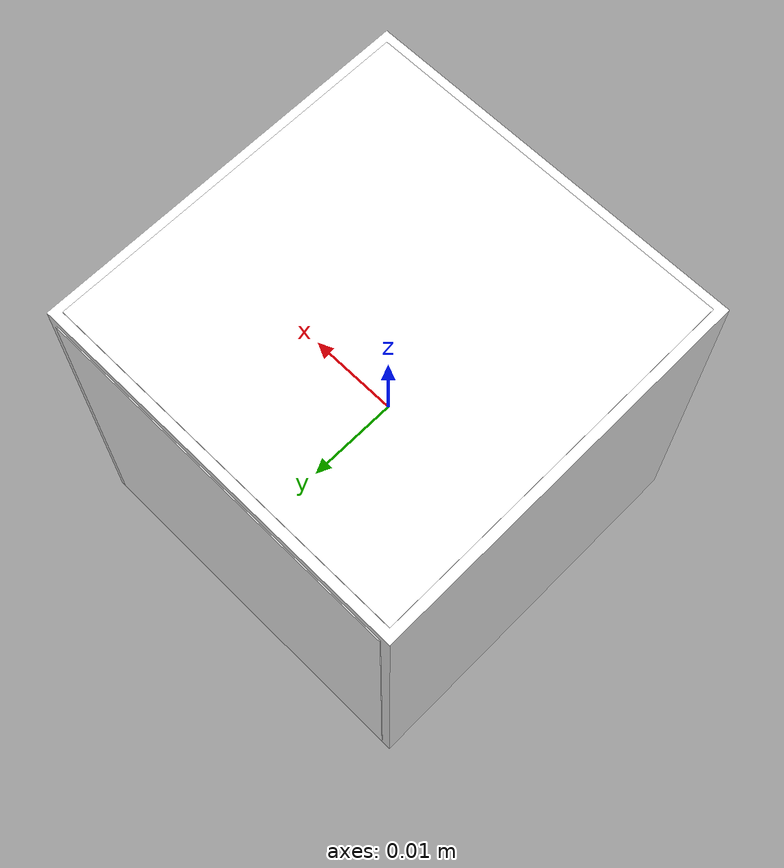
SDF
<?xml version="1.0" ?>
<sdf version="1.6">
  <model name="attc_cube">
    <link name="link">
      <inertial>
        <mass>0.05</mass>
        <inertia>
          <ixx>1.47e-05</ixx>
          <ixy>0</ixy>
          <ixz>0</ixz>
          <iyy>1.47e-05</iyy>
          <iyz>0</iyz>
          <izz>1.47e-05</izz>
        </inertia>
      </inertial>

      <collision name="collision">
        <geometry>
          <box>
            <size>0.042 0.042 0.042</size>
          </box>
        </geometry>
      </collision>

      <!-- Main cube body: white -->
      <visual name="body">
        <geometry>
          <box>
            <size>0.042 0.042 0.042</size>
          </box>
        </geometry>
        <material>
          <ambient>0.95 0.95 0.95 1</ambient>
          <diffuse>0.95 0.95 0.95 1</diffuse>
          <specular>0.1 0.1 0.1 1</specular>
        </material>
      </visual>

      <visual name="apriltag_top">
        <pose>0 0 0.0211 0 0 0</pose>
        <geometry>
          <box>
            <size>0.040 0.040 0.0001</size>
          </box>
        </geometry>
        <material>
          <ambient>1 1 1 1</ambient>
          <diffuse>1 1 1 1</diffuse>
          <pbr>
            <metal>
              <albedo_map>model://atwork_arena_description/materials/textures/apriltag_36h11_id0.png</albedo_map>
            </metal>
          </pbr>
        </material>
      </visual>

      <!-- AprilTag on the front face (Y+) — useful when cube is upright -->
      <visual name="apriltag_front">
        <pose>0 0.0211 0 1.5708 0 0</pose>
        <geometry>
          <box>
            <size>0.040 0.040 0.0001</size>
          </box>
        </geometry>
        <material>
          <ambient>1 1 1 1</ambient>
          <diffuse>1 1 1 1</diffuse>
          <pbr>
            <metal>
              <albedo_map>model://atwork_arena_description/materials/textures/apriltag_36h11_id0.png</albedo_map>
            </metal>
          </pbr>
        </material>
      </visual>
    </link>
  </model>
</sdf>
